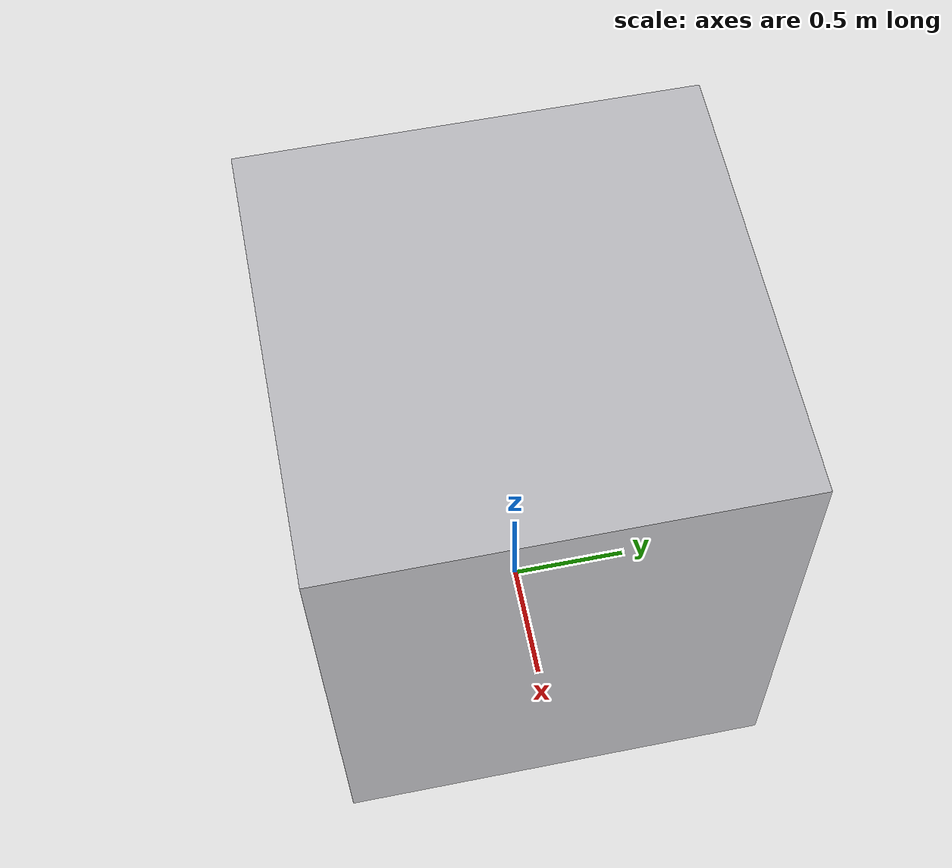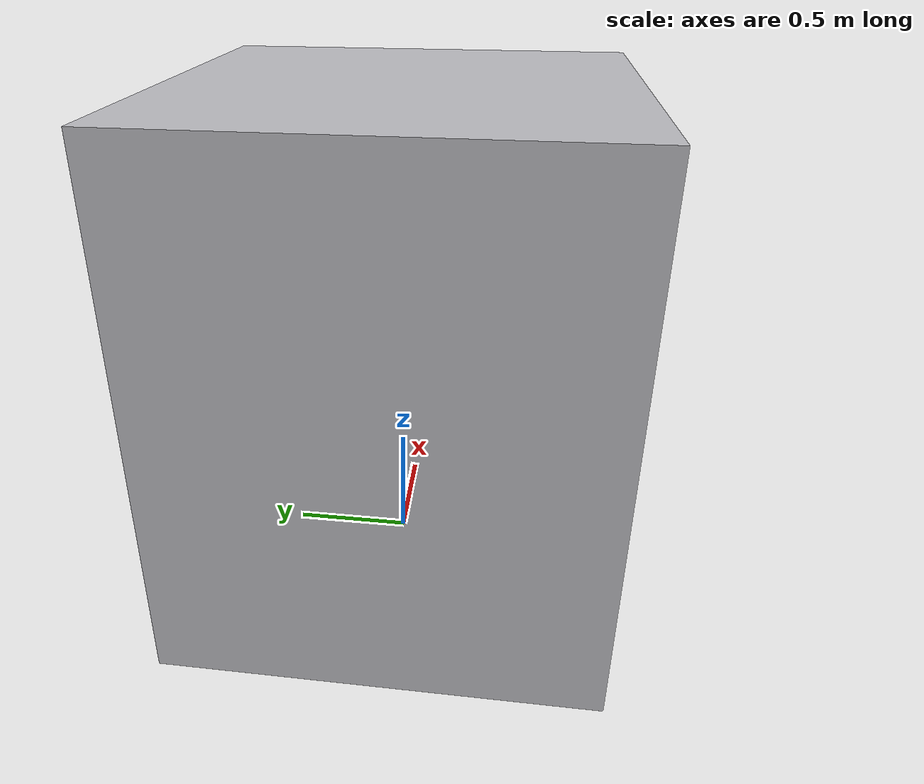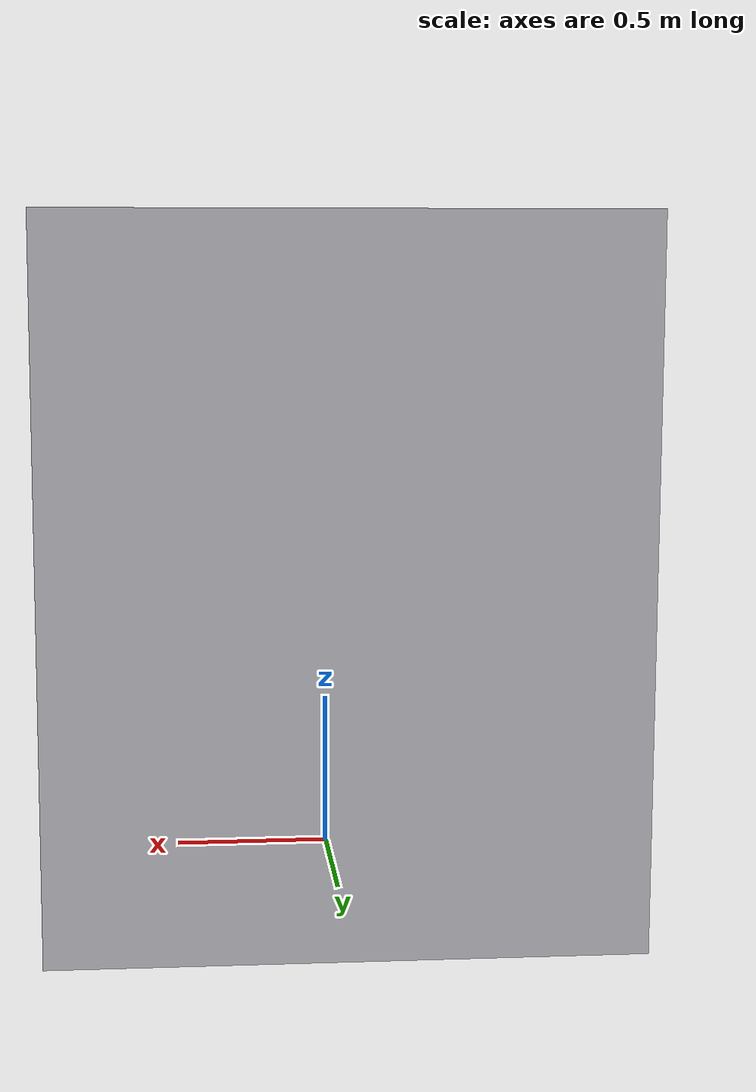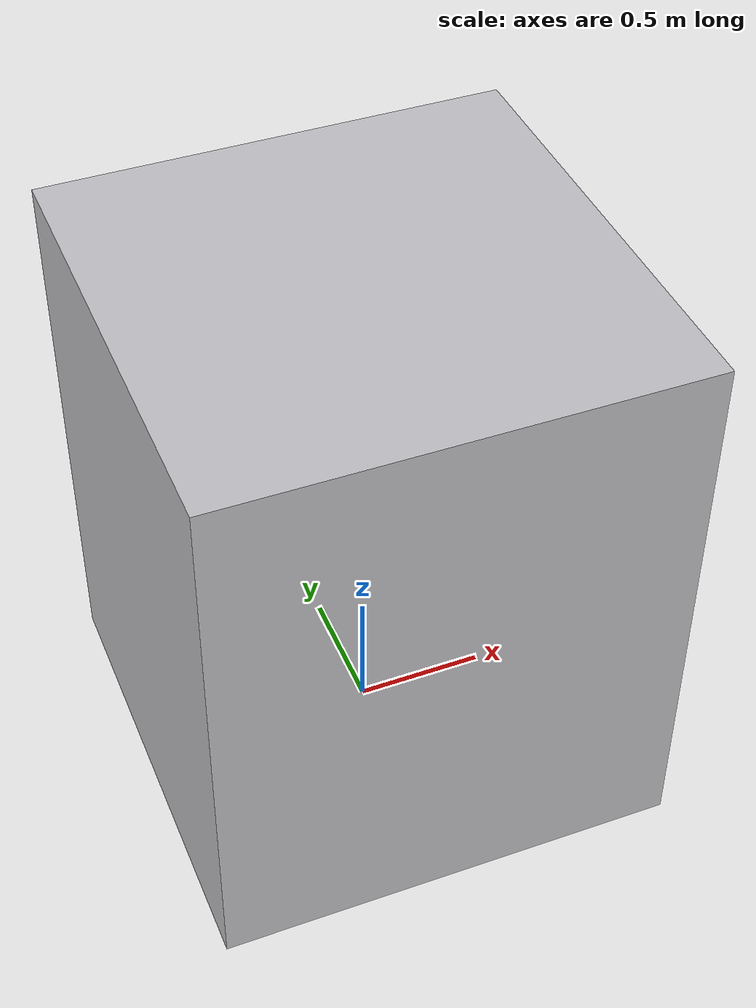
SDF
<?xml version='1.0' encoding='utf-8'?>
<sdf version="1.6">
  <model name="aws_robomaker_hospital_elevator_01_car">
    <static>true</static>
    <link name="link">
      <collision name="collision_1">
        <pose>0 0 1 0 0 0</pose>
        <geometry>
          <box>
            <size>1.8 1.8 2.2</size>
          </box>
        </geometry>
      </collision>
      <visual name="visual_1">
        <pose>0 0 1 0 0 0</pose>
        <geometry>
          <box>
            <size>1.8 1.8 2.2</size>
          </box>
        </geometry>
        <material>
          <ambient>0.76 0.76 0.78 1</ambient>
          <diffuse>0.76 0.76 0.78 1</diffuse>
          <specular>0.08 0.08 0.08 1</specular>
        </material>
      </visual>
    </link>
  </model>
</sdf>
